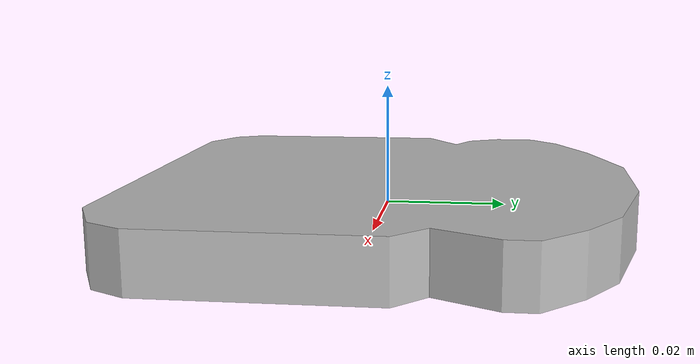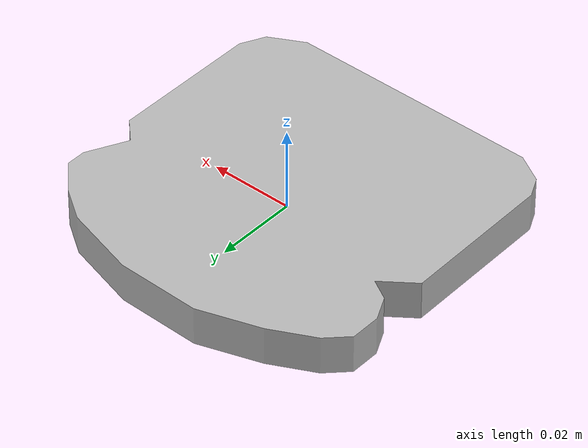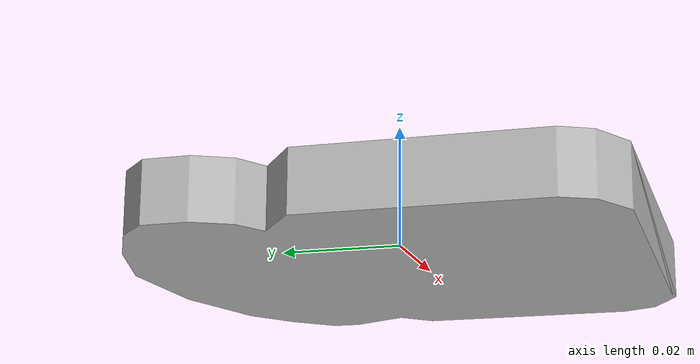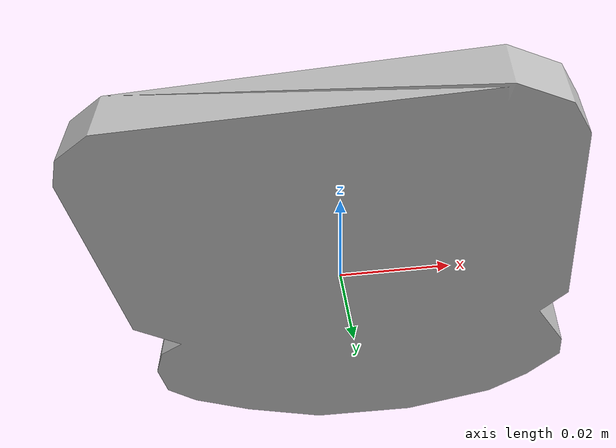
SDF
<?xml version="1.0"?>

<sdf version="1.6">

  <model name="sliced_bread">

    <static>false</static>

    <link name="link">

      <visual name="visual">

        <geometry>
          <mesh>
            <uri>model://sliced_bread/meshes/model.obj</uri>
            <scale>0.55 0.55 0.55</scale>
          </mesh>
        </geometry>

      </visual>

      <collision name="collision">

        <geometry>
          <mesh>
            <uri>model://sliced_bread/meshes/model.obj</uri>
            <scale>0.55 0.55 0.55</scale>
          </mesh>
        </geometry>

      </collision>

    </link>

  </model>

</sdf>
